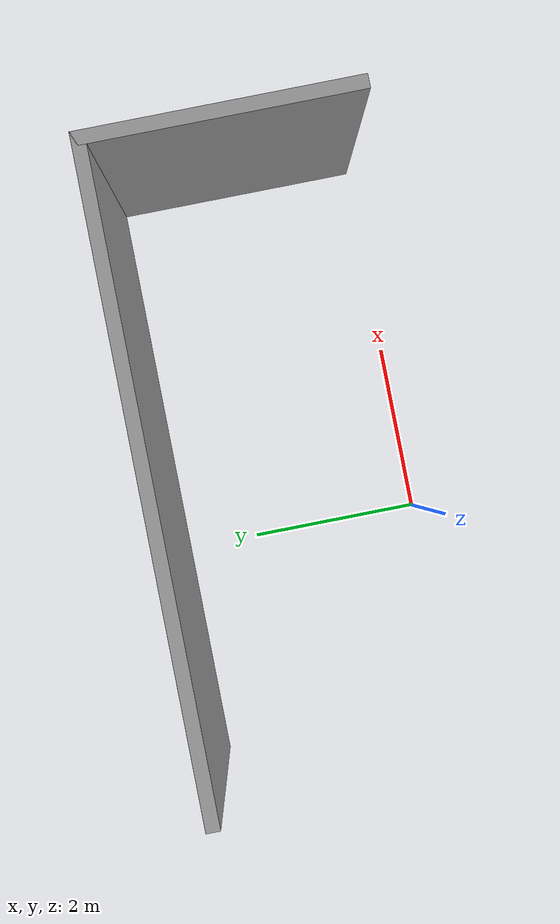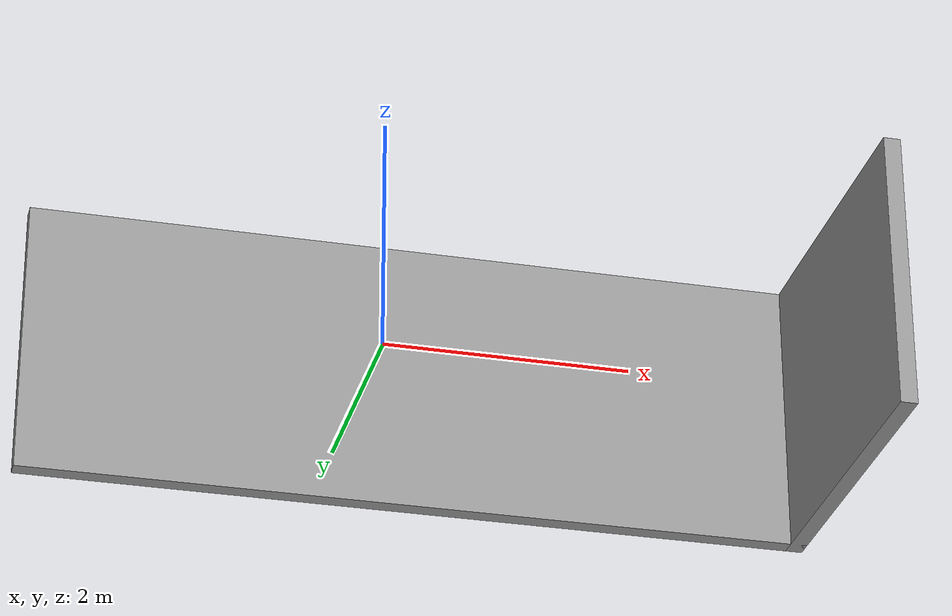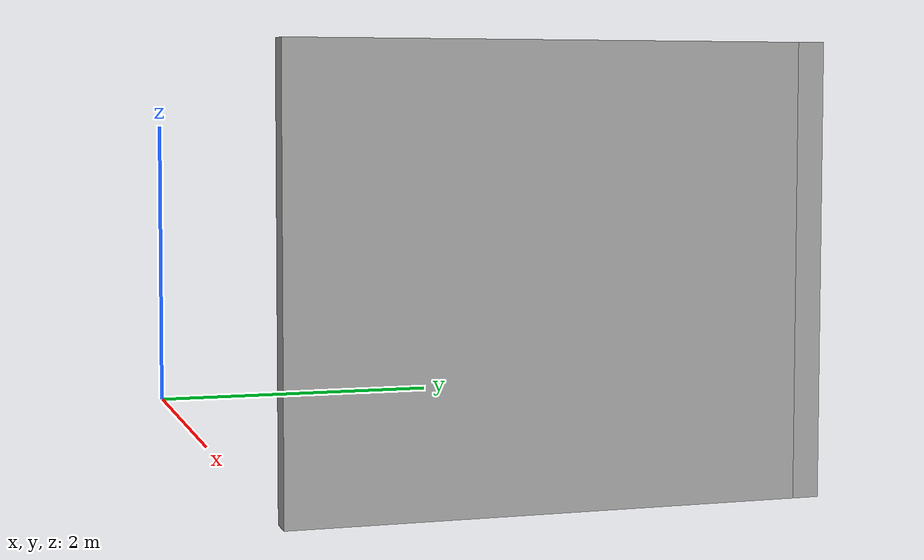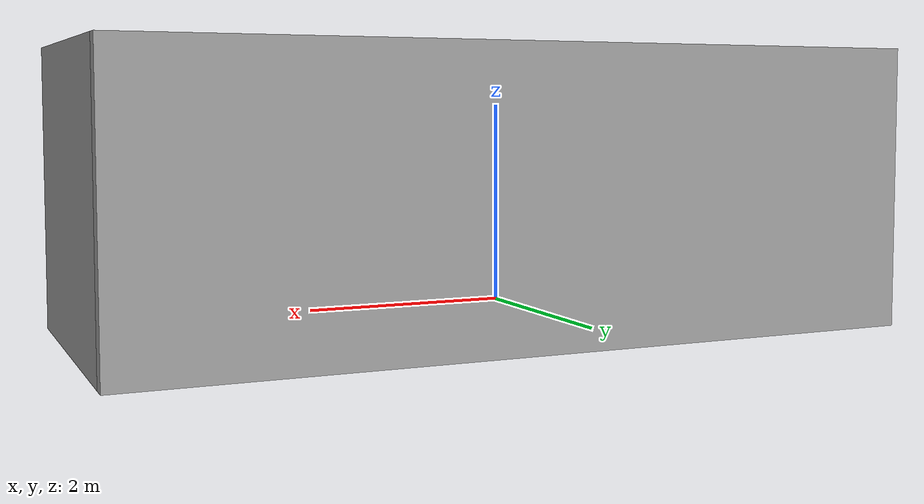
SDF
<?xml version='1.0'?>
<sdf version='1.7'>
  <model name='wall_Lshape_1'>
    <pose>1.0 1.5 0 0 0 -1.570795</pose>
    <link name='Wall_0'>
      <collision name='Wall_0_Collision'>
        <geometry>
          <box>
            <size>7 0.15 2.5</size>
          </box>
        </geometry>
        <pose>0 0 1.25 0 -0 0</pose>
      </collision>
      <visual name='Wall_0_Visual'>
        <pose>0 0 1.25 0 -0 0</pose>
        <geometry>
          <box>
            <size>7 0.15 2.5</size>
          </box>
        </geometry>
        <material>
          <script>
            <uri>file://media/materials/scripts/gazebo.material</uri>
            <name>Gazebo/Grey</name>
          </script>
          <ambient>1 1 1 1</ambient>
        </material>
        <meta>
          <layer>0</layer>
        </meta>
      </visual>
      <pose>-1.425 -0.0525 0 0 -0 1.5708</pose>
    </link>
    <link name='Wall_2'>
      <collision name='Wall_2_Collision'>
        <geometry>
          <box>
            <size>3 0.15 2.5</size>
          </box>
        </geometry>
        <pose>0 0 1.25 0 -0 0</pose>
      </collision>
      <visual name='Wall_2_Visual'>
        <pose>0 0 1.25 0 -0 0</pose>
        <geometry>
          <box>
            <size>3 0.15 2.5</size>
          </box>
        </geometry>
        <material>
          <script>
            <uri>file://media/materials/scripts/gazebo.material</uri>
            <name>Gazebo/Grey</name>
          </script>
          <ambient>1 1 1 1</ambient>
        </material>
        <meta>
          <layer>0</layer>
        </meta>
      </visual>
      <pose>0 3.3725 0 0 -0 0</pose>
    </link>
    <static>1</static>
  </model>
</sdf>
